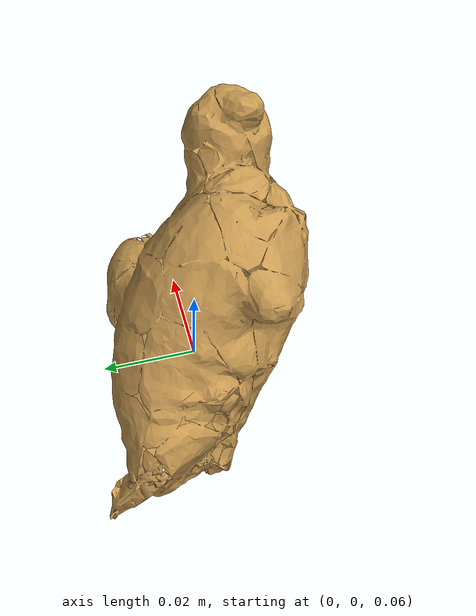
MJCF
<?xml version="1.0" encoding="utf-8"?>
<mujoco model="ginger">
  <compiler angle="radian" meshdir="meshes" autolimits="true"/>
  <asset>
    <mesh name="visual_mesh" file="visual.obj"/>
    <mesh name="collision_mesh" file="collision.stl"/>
  </asset>
  <worldbody>
    <body name="ginger" pos="0 0 0.080">
      <freejoint/>
      <inertial pos="-0.00162693 -0.00028175 0.00061394" mass="0.057462" diaginertia="0.00001626 0.00002307 0.00001699"/>
      <geom name="visual" type="mesh" mesh="visual_mesh" rgba="0.78 0.6 0.32 1" contype="0" conaffinity="0" group="0"/>
      <geom name="collision" type="mesh" mesh="collision_mesh" group="3"/>
    </body>
  </worldbody>
</mujoco>
